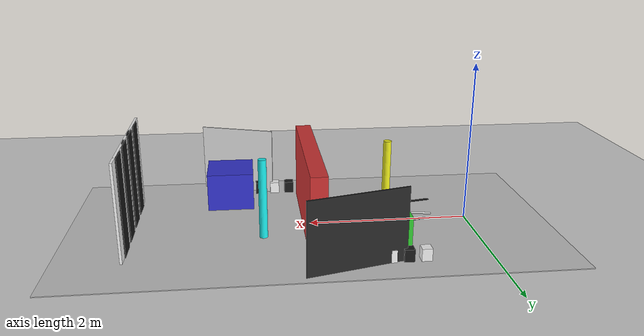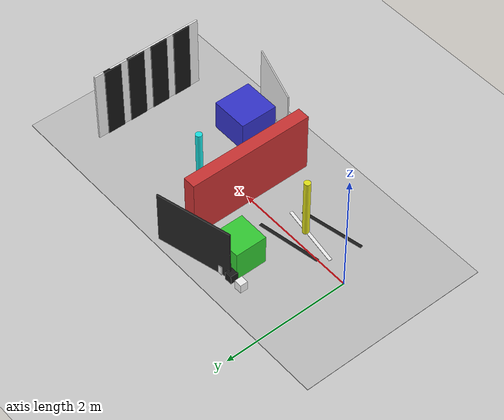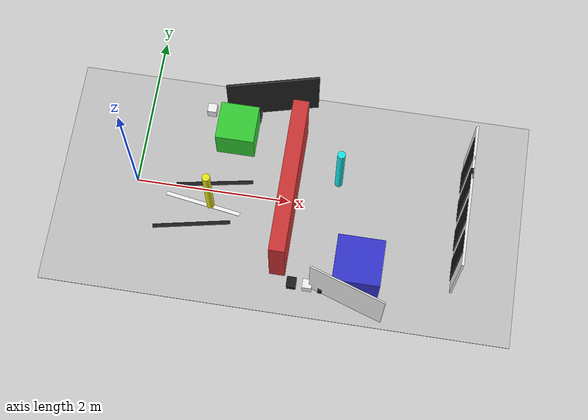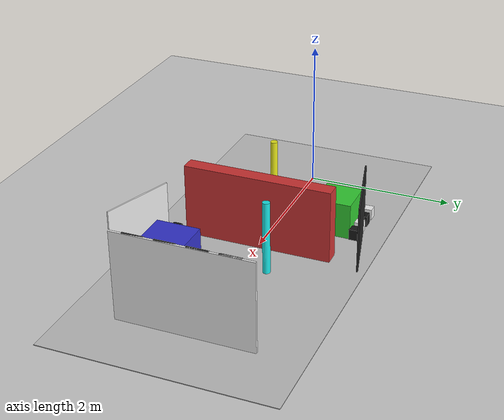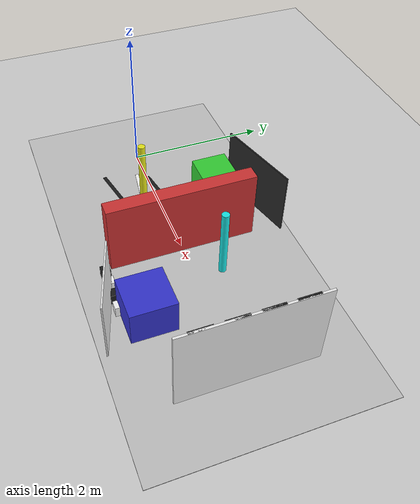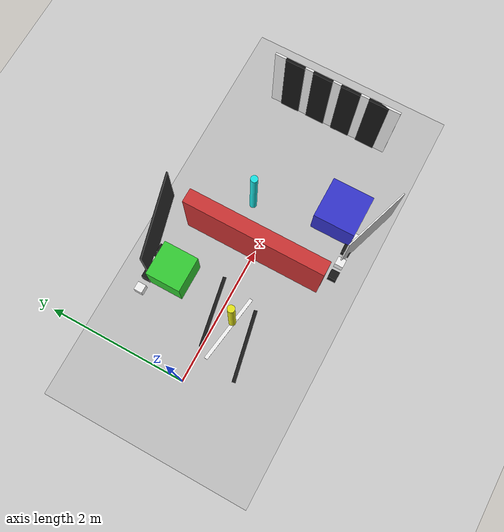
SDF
<?xml version="1.0" ?>
<sdf version="1.6">
  <world name="nav_obstacle_world">
    <include>
      <uri>model://ground_plane</uri>
    </include>
    <include>
      <uri>model://sun</uri>
    </include>

    <model name="wall_1">
      <static>true</static>
      <pose>2.0 0.0 0.5 0 0 0</pose>
      <link name="link">
        <collision name="collision">
          <geometry>
            <box>
              <size>0.2 2.0 1.0</size>
            </box>
          </geometry>
        </collision>
        <visual name="visual">
          <geometry>
            <box>
              <size>0.2 2.0 1.0</size>
            </box>
          </geometry>
          <material>
            <ambient>0.8 0.2 0.2 1</ambient>
            <diffuse>0.8 0.2 0.2 1</diffuse>
          </material>
        </visual>
      </link>
    </model>

    <model name="box_1">
      <static>true</static>
      <pose>1.2 0.8 0.25 0 0 0</pose>
      <link name="link">
        <collision name="collision">
          <geometry>
            <box>
              <size>0.5 0.5 0.5</size>
            </box>
          </geometry>
        </collision>
        <visual name="visual">
          <geometry>
            <box>
              <size>0.5 0.5 0.5</size>
            </box>
          </geometry>
          <material>
            <ambient>0.2 0.8 0.2 1</ambient>
            <diffuse>0.2 0.8 0.2 1</diffuse>
          </material>
        </visual>
      </link>
    </model>

    <model name="box_2">
      <static>true</static>
      <pose>3.0 -0.8 0.25 0 0 0</pose>
      <link name="link">
        <collision name="collision">
          <geometry>
            <box>
              <size>0.6 0.6 0.5</size>
            </box>
          </geometry>
        </collision>
        <visual name="visual">
          <geometry>
            <box>
              <size>0.6 0.6 0.5</size>
            </box>
          </geometry>
          <material>
            <ambient>0.2 0.2 0.8 1</ambient>
            <diffuse>0.2 0.2 0.8 1</diffuse>
          </material>
        </visual>
      </link>
    </model>

    <!-- Feature-rich floor patch to increase ORB corners -->
    <model name="feature_floor_patch">
      <static>true</static>
      <pose>2.0 0.0 0.005 0 0 0</pose>
      <link name="link">
        <collision name="collision">
          <geometry>
            <box>
              <size>6.0 3.0 0.01</size>
            </box>
          </geometry>
        </collision>
        <visual name="visual">
          <geometry>
            <box>
              <size>6.0 3.0 0.01</size>
            </box>
          </geometry>
          <material>
            <ambient>0.75 0.75 0.75 1</ambient>
            <diffuse>0.75 0.75 0.75 1</diffuse>
          </material>
        </visual>
      </link>
    </model>

    <!-- Thin textured-like panels (visual corners) -->
    <model name="feature_panel_left">
      <static>true</static>
      <pose>1.6 1.25 0.45 0 0 0.25</pose>
      <link name="link">
        <collision name="collision">
          <geometry>
            <box>
              <size>1.2 0.02 0.9</size>
            </box>
          </geometry>
        </collision>
        <visual name="visual">
          <geometry>
            <box>
              <size>1.2 0.02 0.9</size>
            </box>
          </geometry>
          <material>
            <ambient>0.15 0.15 0.15 1</ambient>
            <diffuse>0.15 0.15 0.15 1</diffuse>
          </material>
        </visual>
      </link>
    </model>

    <model name="feature_panel_right">
      <static>true</static>
      <pose>2.9 -1.25 0.45 0 0 -0.32</pose>
      <link name="link">
        <collision name="collision">
          <geometry>
            <box>
              <size>1.0 0.02 0.9</size>
            </box>
          </geometry>
        </collision>
        <visual name="visual">
          <geometry>
            <box>
              <size>1.0 0.02 0.9</size>
            </box>
          </geometry>
          <material>
            <ambient>0.9 0.9 0.9 1</ambient>
            <diffuse>0.9 0.9 0.9 1</diffuse>
          </material>
        </visual>
      </link>
    </model>

    <!-- Corner markers: alternating small cubes -->
    <model name="feature_cube_1">
      <static>true</static>
      <pose>0.8 1.1 0.08 0 0 0</pose>
      <link name="link">
        <collision name="collision"><geometry><box><size>0.12 0.12 0.16</size></box></geometry></collision>
        <visual name="visual"><geometry><box><size>0.12 0.12 0.16</size></box></geometry><material><ambient>0.95 0.95 0.95 1</ambient><diffuse>0.95 0.95 0.95 1</diffuse></material></visual>
      </link>
    </model>
    <model name="feature_cube_2">
      <static>true</static>
      <pose>1.0 1.1 0.08 0 0 0</pose>
      <link name="link">
        <collision name="collision"><geometry><box><size>0.12 0.12 0.16</size></box></geometry></collision>
        <visual name="visual"><geometry><box><size>0.12 0.12 0.16</size></box></geometry><material><ambient>0.1 0.1 0.1 1</ambient><diffuse>0.1 0.1 0.1 1</diffuse></material></visual>
      </link>
    </model>
    <model name="feature_cube_3">
      <static>true</static>
      <pose>1.2 1.1 0.08 0 0 0</pose>
      <link name="link">
        <collision name="collision"><geometry><box><size>0.12 0.12 0.16</size></box></geometry></collision>
        <visual name="visual"><geometry><box><size>0.12 0.12 0.16</size></box></geometry><material><ambient>0.95 0.95 0.95 1</ambient><diffuse>0.95 0.95 0.95 1</diffuse></material></visual>
      </link>
    </model>
    <model name="feature_cube_4">
      <static>true</static>
      <pose>1.4 1.1 0.08 0 0 0</pose>
      <link name="link">
        <collision name="collision"><geometry><box><size>0.12 0.12 0.16</size></box></geometry></collision>
        <visual name="visual"><geometry><box><size>0.12 0.12 0.16</size></box></geometry><material><ambient>0.1 0.1 0.1 1</ambient><diffuse>0.1 0.1 0.1 1</diffuse></material></visual>
      </link>
    </model>
    <model name="feature_cube_5">
      <static>true</static>
      <pose>2.2 -1.1 0.08 0 0 0</pose>
      <link name="link">
        <collision name="collision"><geometry><box><size>0.12 0.12 0.16</size></box></geometry></collision>
        <visual name="visual"><geometry><box><size>0.12 0.12 0.16</size></box></geometry><material><ambient>0.1 0.1 0.1 1</ambient><diffuse>0.1 0.1 0.1 1</diffuse></material></visual>
      </link>
    </model>
    <model name="feature_cube_6">
      <static>true</static>
      <pose>2.4 -1.1 0.08 0 0 0</pose>
      <link name="link">
        <collision name="collision"><geometry><box><size>0.12 0.12 0.16</size></box></geometry></collision>
        <visual name="visual"><geometry><box><size>0.12 0.12 0.16</size></box></geometry><material><ambient>0.95 0.95 0.95 1</ambient><diffuse>0.95 0.95 0.95 1</diffuse></material></visual>
      </link>
    </model>
    <model name="feature_cube_7">
      <static>true</static>
      <pose>2.6 -1.1 0.08 0 0 0</pose>
      <link name="link">
        <collision name="collision"><geometry><box><size>0.12 0.12 0.16</size></box></geometry></collision>
        <visual name="visual"><geometry><box><size>0.12 0.12 0.16</size></box></geometry><material><ambient>0.1 0.1 0.1 1</ambient><diffuse>0.1 0.1 0.1 1</diffuse></material></visual>
      </link>
    </model>
    <model name="feature_cube_8">
      <static>true</static>
      <pose>2.8 -1.1 0.08 0 0 0</pose>
      <link name="link">
        <collision name="collision"><geometry><box><size>0.12 0.12 0.16</size></box></geometry></collision>
        <visual name="visual"><geometry><box><size>0.12 0.12 0.16</size></box></geometry><material><ambient>0.95 0.95 0.95 1</ambient><diffuse>0.95 0.95 0.95 1</diffuse></material></visual>
      </link>
    </model>

    <!-- Vertical poles add edge features in depth -->
    <model name="feature_pole_1">
      <static>true</static>
      <pose>1.0 -0.2 0.5 0 0 0</pose>
      <link name="link">
        <collision name="collision">
          <geometry>
            <cylinder>
              <radius>0.05</radius>
              <length>1.0</length>
            </cylinder>
          </geometry>
        </collision>
        <visual name="visual">
          <geometry>
            <cylinder>
              <radius>0.05</radius>
              <length>1.0</length>
            </cylinder>
          </geometry>
          <material>
            <ambient>0.9 0.9 0.1 1</ambient>
            <diffuse>0.9 0.9 0.1 1</diffuse>
          </material>
        </visual>
      </link>
    </model>

    <model name="feature_pole_2">
      <static>true</static>
      <pose>2.6 0.35 0.5 0 0 0</pose>
      <link name="link">
        <collision name="collision">
          <geometry>
            <cylinder>
              <radius>0.05</radius>
              <length>1.0</length>
            </cylinder>
          </geometry>
        </collision>
        <visual name="visual">
          <geometry>
            <cylinder>
              <radius>0.05</radius>
              <length>1.0</length>
            </cylinder>
          </geometry>
          <material>
            <ambient>0.1 0.9 0.9 1</ambient>
            <diffuse>0.1 0.9 0.9 1</diffuse>
          </material>
        </visual>
      </link>
    </model>

    <!-- High-frequency stripe wall (for ORB corners) -->
    <model name="stripe_wall_white">
      <static>true</static>
      <pose>4.2 0.0 0.6 0 0 1.5708</pose>
      <link name="link">
        <collision name="collision">
          <geometry>
            <box>
              <size>1.8 0.03 1.2</size>
            </box>
          </geometry>
        </collision>
        <visual name="visual">
          <geometry>
            <box>
              <size>1.8 0.03 1.2</size>
            </box>
          </geometry>
          <material>
            <ambient>0.92 0.92 0.92 1</ambient>
            <diffuse>0.92 0.92 0.92 1</diffuse>
          </material>
        </visual>
      </link>
    </model>

    <model name="stripe_wall_black_1">
      <static>true</static>
      <pose>4.19 -0.6 0.6 0 0 1.5708</pose>
      <link name="link">
        <collision name="collision"><geometry><box><size>0.28 0.035 1.2</size></box></geometry></collision>
        <visual name="visual"><geometry><box><size>0.28 0.035 1.2</size></box></geometry><material><ambient>0.08 0.08 0.08 1</ambient><diffuse>0.08 0.08 0.08 1</diffuse></material></visual>
      </link>
    </model>
    <model name="stripe_wall_black_2">
      <static>true</static>
      <pose>4.19 -0.2 0.6 0 0 1.5708</pose>
      <link name="link">
        <collision name="collision"><geometry><box><size>0.28 0.035 1.2</size></box></geometry></collision>
        <visual name="visual"><geometry><box><size>0.28 0.035 1.2</size></box></geometry><material><ambient>0.08 0.08 0.08 1</ambient><diffuse>0.08 0.08 0.08 1</diffuse></material></visual>
      </link>
    </model>
    <model name="stripe_wall_black_3">
      <static>true</static>
      <pose>4.19 0.2 0.6 0 0 1.5708</pose>
      <link name="link">
        <collision name="collision"><geometry><box><size>0.28 0.035 1.2</size></box></geometry></collision>
        <visual name="visual"><geometry><box><size>0.28 0.035 1.2</size></box></geometry><material><ambient>0.08 0.08 0.08 1</ambient><diffuse>0.08 0.08 0.08 1</diffuse></material></visual>
      </link>
    </model>
    <model name="stripe_wall_black_4">
      <static>true</static>
      <pose>4.19 0.6 0.6 0 0 1.5708</pose>
      <link name="link">
        <collision name="collision"><geometry><box><size>0.28 0.035 1.2</size></box></geometry></collision>
        <visual name="visual"><geometry><box><size>0.28 0.035 1.2</size></box></geometry><material><ambient>0.08 0.08 0.08 1</ambient><diffuse>0.08 0.08 0.08 1</diffuse></material></visual>
      </link>
    </model>

    <!-- Floor stripe markers near start -->
    <model name="floor_stripe_1">
      <static>true</static>
      <pose>0.8 -0.5 0.012 0 0 0.2</pose>
      <link name="link">
        <collision name="collision"><geometry><box><size>1.0 0.05 0.01</size></box></geometry></collision>
        <visual name="visual"><geometry><box><size>1.0 0.05 0.01</size></box></geometry><material><ambient>0.1 0.1 0.1 1</ambient><diffuse>0.1 0.1 0.1 1</diffuse></material></visual>
      </link>
    </model>
    <model name="floor_stripe_2">
      <static>true</static>
      <pose>0.9 -0.2 0.012 0 0 -0.15</pose>
      <link name="link">
        <collision name="collision"><geometry><box><size>1.0 0.05 0.01</size></box></geometry></collision>
        <visual name="visual"><geometry><box><size>1.0 0.05 0.01</size></box></geometry><material><ambient>0.95 0.95 0.95 1</ambient><diffuse>0.95 0.95 0.95 1</diffuse></material></visual>
      </link>
    </model>
    <model name="floor_stripe_3">
      <static>true</static>
      <pose>1.0 0.1 0.012 0 0 0.18</pose>
      <link name="link">
        <collision name="collision"><geometry><box><size>1.0 0.05 0.01</size></box></geometry></collision>
        <visual name="visual"><geometry><box><size>1.0 0.05 0.01</size></box></geometry><material><ambient>0.1 0.1 0.1 1</ambient><diffuse>0.1 0.1 0.1 1</diffuse></material></visual>
      </link>
    </model>
  </world>
</sdf>
